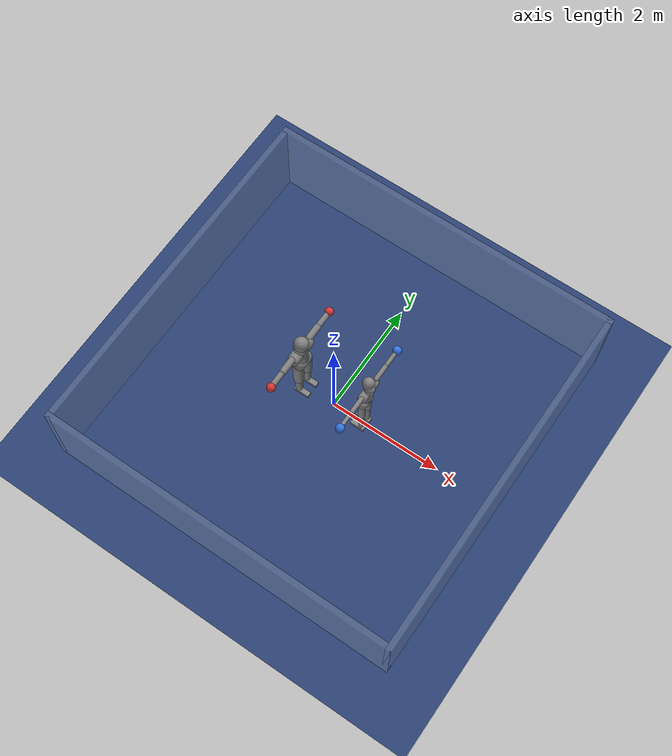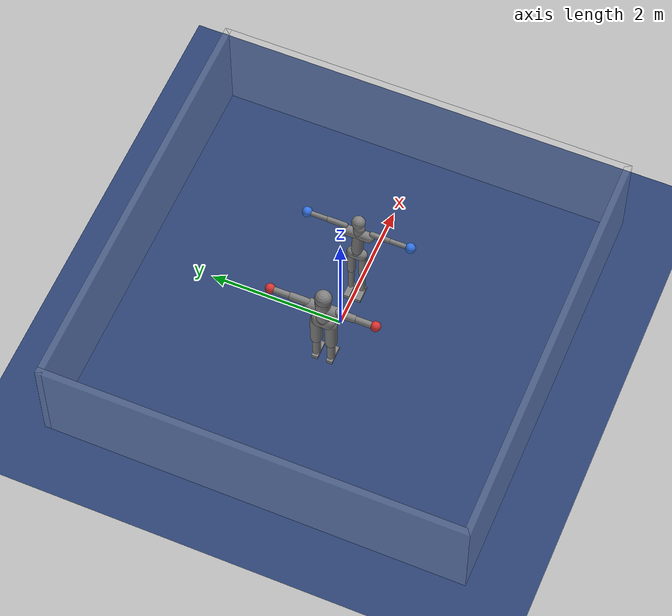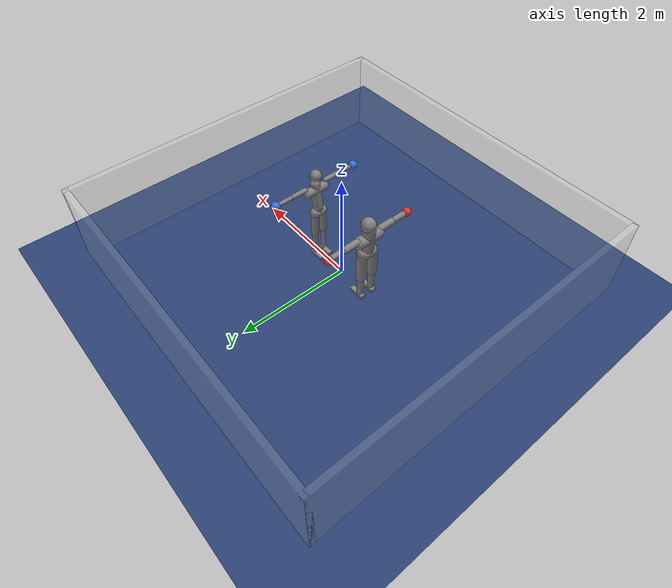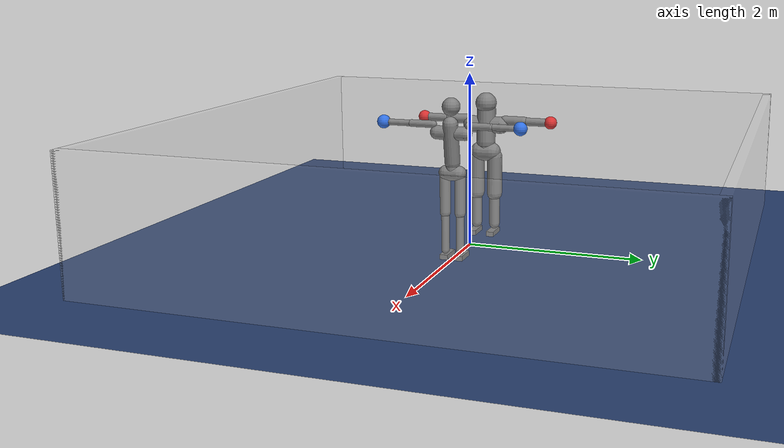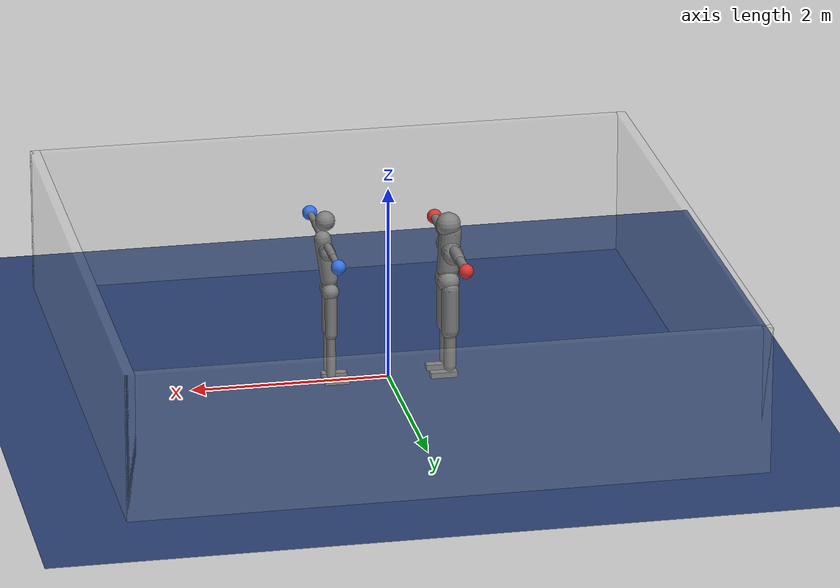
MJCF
<mujoco model="trump_vs_matt_spar">
  <compiler angle="degree" inertiafromgeom="true" autolimits="true"/>
  <option timestep="0.005" iterations="10" ls_iterations="10" integrator="implicitfast">
    <flag eulerdamp="disable"/>
  </option>
  <default>
    <geom contype="1" conaffinity="1" condim="3" friction="1.0 0.005 0.0001" density="1000" margin="0"/>
    <joint limited="true"/>
    <position ctrllimited="true"/>
  </default>
  <asset>
    <texture name="grid" type="2d" builtin="checker" rgb1=".18 .28 .48" rgb2=".14 .22 .40" width="300" height="300"/>
    <material name="grid" texture="grid" texrepeat="6 6" reflectance="0"/>
  </asset>
  <worldbody>
    <light pos="0 0 5" dir="0 0 -1" directional="true"/>
    <geom name="floor" type="plane" size="0 0 0.05" material="grid" friction="1.0 0.005 0.0001"/>
    <geom name="rope_n" type="box" pos="0.0000 3.1000 0.7500" size="3.1500 0.0500 0.7500" rgba="0.8 0.8 0.8 0.15"/>
    <geom name="rope_s" type="box" pos="0.0000 -3.1000 0.7500" size="3.1500 0.0500 0.7500" rgba="0.8 0.8 0.8 0.15"/>
    <geom name="rope_e" type="box" pos="3.1000 0.0000 0.7500" size="0.0500 3.1500 0.7500" rgba="0.8 0.8 0.8 0.15"/>
    <geom name="rope_w" type="box" pos="-3.1000 0.0000 0.7500" size="0.0500 3.1500 0.7500" rgba="0.8 0.8 0.8 0.15"/>
    <body name="a_pelvis" pos="-0.6000 0.0000 0.9982" quat="1.00000 0 0 0.00000">
      <freejoint name="a_root"/>
      <geom name="a_pelvis_geom" type="capsule" fromto="0.0000 -0.0700 0.0000 0.0000 0.0700 0.0000" size="0.1121" mass="9.6630" />
      <geom name="a_pelvis_up" type="capsule" fromto="0.0000 0.0000 0.0000 -0.0074 0.0000 0.0765" size="0.1009" mass="5.7156" />
      <body name="a_torso" pos="-0.0074 0.0000 0.0965">
        <joint name="a_abdomen_z" type="hinge" axis="0 0 1" range="-45 45" damping="0.5" armature="0.08" stiffness="0"/>
        <joint name="a_abdomen_y" type="hinge" axis="0 1 0" range="-60 30" damping="0.5" armature="0.08" stiffness="0"/>
        <joint name="a_abdomen_x" type="hinge" axis="1 0 0" range="-35 35" damping="0.5" armature="0.08" stiffness="0"/>
        <geom name="a_torso_geom" type="capsule" fromto="0.0000 0.0000 0.0200 -0.0223 0.0000 0.4131" size="0.1121" mass="38.4465" />
        <geom name="a_chest_geom" type="capsule" fromto="-0.0178 -0.1841 0.2257 -0.0178 0.1841 0.2257" size="0.1009" mass="0.5"/>
        <geom name="a_head_geom" type="sphere" pos="-0.0037 0.0000 0.4861" size="0.1250" mass="8.7723" />
        <body name="a_upper_arm_l" pos="-0.0223 0.2301 0.2821">
          <joint name="a_shoulder_x_l" type="hinge" axis="1 0 0" range="-170 30" damping="0.5" armature="0.03" stiffness="0"/>
          <joint name="a_shoulder_z_l" type="hinge" axis="0 0 1" range="-110 110" damping="0.5" armature="0.03" stiffness="0"/>
          <geom name="a_upper_arm_l_geom" type="capsule" fromto="0.0000 0.0000 0.0000 0.0000 0.2324 0.0000" size="0.0580" mass="3.0324" />
          <body name="a_forearm_l" pos="0.0000 0.2324 0.0000">
            <joint name="a_elbow_l" type="hinge" axis="0 0 1" range="-150 0" damping="0.5" armature="0.02" stiffness="0"/>
            <geom name="a_forearm_l_geom" type="capsule" fromto="0.0000 0.0000 0.0000 0.0000 0.2561 0.0000" size="0.0480" mass="1.7328" />
            <geom name="a_glove_l" type="sphere" pos="0.0000 0.3236 0.0000" size="0.0750" mass="0.9328" rgba="0.85 0.2 0.2 1"/>
          </body>
        </body>
        <body name="a_upper_arm_r" pos="-0.0223 -0.2301 0.2821">
          <joint name="a_shoulder_x_r" type="hinge" axis="1 0 0" range="-30 170" damping="0.5" armature="0.03" stiffness="0"/>
          <joint name="a_shoulder_z_r" type="hinge" axis="0 0 1" range="-110 110" damping="0.5" armature="0.03" stiffness="0"/>
          <geom name="a_upper_arm_r_geom" type="capsule" fromto="0.0000 0.0000 0.0000 0.0000 -0.2324 0.0000" size="0.0580" mass="3.0324" />
          <body name="a_forearm_r" pos="0.0000 -0.2324 0.0000">
            <joint name="a_elbow_r" type="hinge" axis="0 0 1" range="0 150" damping="0.5" armature="0.02" stiffness="0"/>
            <geom name="a_forearm_r_geom" type="capsule" fromto="0.0000 0.0000 0.0000 0.0000 -0.2561 0.0000" size="0.0480" mass="1.7328" />
            <geom name="a_glove_r" type="sphere" pos="0.0000 -0.3236 0.0000" size="0.0750" mass="0.9328" rgba="0.85 0.2 0.2 1"/>
          </body>
        </body>
      </body>
      <body name="a_thigh_l" pos="-0.0074 0.1113 -0.0593">
        <joint name="a_hip_x_l" type="hinge" axis="1 0 0" range="-40 40" damping="0.5" armature="0.1" stiffness="0"/>
        <joint name="a_hip_z_l" type="hinge" axis="0 0 1" range="-35 35" damping="0.5" armature="0.1" stiffness="0"/>
        <joint name="a_hip_y_l" type="hinge" axis="0 1 0" range="-120 30" damping="0.5" armature="0.1" stiffness="0"/>
        <geom name="a_thigh_l_geom" type="capsule" fromto="0.0000 0.0000 0.0000 0.0000 0.0000 -0.4454" size="0.0900" mass="10.8300" />
        <body name="a_shin_l" pos="0.0000 0.0000 -0.4454">
          <joint name="a_knee_l" type="hinge" axis="0 1 0" range="0 150" damping="0.5" armature="0.1" stiffness="0"/>
          <geom name="a_shin_l_geom" type="capsule" fromto="0.0000 0.0000 0.0000 0.0000 0.0000 -0.3790" size="0.0620" mass="5.0359" />
          <body name="a_foot_l" pos="0.0000 0.0000 -0.3790">
            <joint name="a_ankle_y_l" type="hinge" axis="0 1 0" range="-20 50" damping="0.5" armature="0.03" stiffness="0"/>
            <joint name="a_ankle_x_l" type="hinge" axis="1 0 0" range="-25 25" damping="0.5" armature="0.03" stiffness="0"/>
            <geom name="a_foot_l_geom" type="box" pos="0.0627 0.0000 -0.0870" size="0.1363 0.0450 0.0280" mass="1.5704" friction="1.0 0.005 0.0001"/>
            <site name="a_foot_l_site" pos="0.0627 0.0000 -0.0870" size="0.01"/>
          </body>
        </body>
      </body>
      <body name="a_thigh_r" pos="-0.0074 -0.1113 -0.0593">
        <joint name="a_hip_x_r" type="hinge" axis="1 0 0" range="-40 40" damping="0.5" armature="0.1" stiffness="0"/>
        <joint name="a_hip_z_r" type="hinge" axis="0 0 1" range="-35 35" damping="0.5" armature="0.1" stiffness="0"/>
        <joint name="a_hip_y_r" type="hinge" axis="0 1 0" range="-120 30" damping="0.5" armature="0.1" stiffness="0"/>
        <geom name="a_thigh_r_geom" type="capsule" fromto="0.0000 0.0000 0.0000 0.0000 0.0000 -0.4454" size="0.0900" mass="10.8300" />
        <body name="a_shin_r" pos="0.0000 0.0000 -0.4454">
          <joint name="a_knee_r" type="hinge" axis="0 1 0" range="0 150" damping="0.5" armature="0.1" stiffness="0"/>
          <geom name="a_shin_r_geom" type="capsule" fromto="0.0000 0.0000 0.0000 0.0000 0.0000 -0.3790" size="0.0620" mass="5.0359" />
          <body name="a_foot_r" pos="0.0000 0.0000 -0.3790">
            <joint name="a_ankle_y_r" type="hinge" axis="0 1 0" range="-20 50" damping="0.5" armature="0.03" stiffness="0"/>
            <joint name="a_ankle_x_r" type="hinge" axis="1 0 0" range="-25 25" damping="0.5" armature="0.03" stiffness="0"/>
            <geom name="a_foot_r_geom" type="box" pos="0.0627 0.0000 -0.0870" size="0.1363 0.0450 0.0280" mass="1.5704" friction="1.0 0.005 0.0001"/>
            <site name="a_foot_r_site" pos="0.0627 0.0000 -0.0870" size="0.01"/>
          </body>
        </body>
      </body>
    </body>
    <body name="b_pelvis" pos="0.6000 0.0000 0.9741" quat="0.00000 0 0 1.00000">
      <freejoint name="b_root"/>
      <geom name="b_pelvis_geom" type="capsule" fromto="0.0000 -0.0700 0.0000 0.0000 0.0700 0.0000" size="0.0850" mass="7.0977" />
      <geom name="b_pelvis_up" type="capsule" fromto="0.0000 0.0000 0.0000 -0.0008 0.0000 0.0758" size="0.0765" mass="4.0351" />
      <body name="b_torso" pos="-0.0008 0.0000 0.0958">
        <joint name="b_abdomen_z" type="hinge" axis="0 0 1" range="-45 45" damping="0.5" armature="0.08" stiffness="0"/>
        <joint name="b_abdomen_y" type="hinge" axis="0 1 0" range="-60 30" damping="0.5" armature="0.08" stiffness="0"/>
        <joint name="b_abdomen_x" type="hinge" axis="1 0 0" range="-35 35" damping="0.5" armature="0.08" stiffness="0"/>
        <geom name="b_torso_geom" type="capsule" fromto="0.0000 0.0000 0.0200 -0.0653 -0.0000 0.4511" size="0.0850" mass="27.8320" />
        <geom name="b_chest_geom" type="capsule" fromto="-0.0402 -0.1614 0.3530 -0.0402 0.1614 0.3530" size="0.0765" mass="0.5"/>
        <geom name="b_head_geom" type="sphere" pos="-0.0385 -0.0000 0.6398" size="0.1000" mass="6.3504" />
        <body name="b_upper_arm_l" pos="-0.0503 0.2018 0.4412">
          <joint name="b_shoulder_x_l" type="hinge" axis="1 0 0" range="-170 30" damping="0.5" armature="0.03" stiffness="0"/>
          <joint name="b_shoulder_z_l" type="hinge" axis="0 0 1" range="-110 110" damping="0.5" armature="0.03" stiffness="0"/>
          <geom name="b_upper_arm_l_geom" type="capsule" fromto="0.0000 0.0000 0.0000 0.0000 0.2524 0.0000" size="0.0400" mass="2.1952" />
          <body name="b_forearm_l" pos="0.0000 0.2524 0.0000">
            <joint name="b_elbow_l" type="hinge" axis="0 0 1" range="-150 0" damping="0.5" armature="0.02" stiffness="0"/>
            <geom name="b_forearm_l_geom" type="capsule" fromto="0.0000 0.0000 0.0000 0.0000 0.2567 0.0000" size="0.0350" mass="1.2544" />
            <geom name="b_glove_l" type="sphere" pos="0.0000 0.3242 0.0000" size="0.0750" mass="0.7534" rgba="0.2 0.45 0.9 1"/>
          </body>
        </body>
        <body name="b_upper_arm_r" pos="-0.0503 -0.2018 0.4412">
          <joint name="b_shoulder_x_r" type="hinge" axis="1 0 0" range="-30 170" damping="0.5" armature="0.03" stiffness="0"/>
          <joint name="b_shoulder_z_r" type="hinge" axis="0 0 1" range="-110 110" damping="0.5" armature="0.03" stiffness="0"/>
          <geom name="b_upper_arm_r_geom" type="capsule" fromto="0.0000 0.0000 0.0000 0.0000 -0.2524 0.0000" size="0.0400" mass="2.1952" />
          <body name="b_forearm_r" pos="0.0000 -0.2524 0.0000">
            <joint name="b_elbow_r" type="hinge" axis="0 0 1" range="0 150" damping="0.5" armature="0.02" stiffness="0"/>
            <geom name="b_forearm_r_geom" type="capsule" fromto="0.0000 0.0000 0.0000 0.0000 -0.2567 0.0000" size="0.0350" mass="1.2544" />
            <geom name="b_glove_r" type="sphere" pos="0.0000 -0.3242 0.0000" size="0.0750" mass="0.7534" rgba="0.2 0.45 0.9 1"/>
          </body>
        </body>
      </body>
      <body name="b_thigh_l" pos="0.0008 0.0857 -0.0302">
        <joint name="b_hip_x_l" type="hinge" axis="1 0 0" range="-40 40" damping="0.5" armature="0.1" stiffness="0"/>
        <joint name="b_hip_z_l" type="hinge" axis="0 0 1" range="-35 35" damping="0.5" armature="0.1" stiffness="0"/>
        <joint name="b_hip_y_l" type="hinge" axis="0 1 0" range="-120 30" damping="0.5" armature="0.1" stiffness="0"/>
        <geom name="b_thigh_l_geom" type="capsule" fromto="0.0000 0.0000 0.0000 0.0000 0.0000 -0.4154" size="0.0600" mass="7.8400" />
        <body name="b_shin_l" pos="0.0000 0.0000 -0.4154">
          <joint name="b_knee_l" type="hinge" axis="0 1 0" range="0 150" damping="0.5" armature="0.1" stiffness="0"/>
          <geom name="b_shin_l_geom" type="capsule" fromto="0.0000 0.0000 0.0000 0.0000 0.0000 -0.4309" size="0.0450" mass="3.6456" />
          <body name="b_foot_l" pos="0.0000 0.0000 -0.4309">
            <joint name="b_ankle_y_l" type="hinge" axis="0 1 0" range="-20 50" damping="0.5" armature="0.03" stiffness="0"/>
            <joint name="b_ankle_x_l" type="hinge" axis="1 0 0" range="-25 25" damping="0.5" armature="0.03" stiffness="0"/>
            <geom name="b_foot_l_geom" type="box" pos="0.0581 0.0000 -0.0708" size="0.1262 0.0450 0.0280" mass="1.1368" friction="1.0 0.005 0.0001"/>
            <site name="b_foot_l_site" pos="0.0581 0.0000 -0.0708" size="0.01"/>
          </body>
        </body>
      </body>
      <body name="b_thigh_r" pos="0.0008 -0.0857 -0.0302">
        <joint name="b_hip_x_r" type="hinge" axis="1 0 0" range="-40 40" damping="0.5" armature="0.1" stiffness="0"/>
        <joint name="b_hip_z_r" type="hinge" axis="0 0 1" range="-35 35" damping="0.5" armature="0.1" stiffness="0"/>
        <joint name="b_hip_y_r" type="hinge" axis="0 1 0" range="-120 30" damping="0.5" armature="0.1" stiffness="0"/>
        <geom name="b_thigh_r_geom" type="capsule" fromto="0.0000 0.0000 0.0000 0.0000 0.0000 -0.4154" size="0.0600" mass="7.8400" />
        <body name="b_shin_r" pos="0.0000 0.0000 -0.4154">
          <joint name="b_knee_r" type="hinge" axis="0 1 0" range="0 150" damping="0.5" armature="0.1" stiffness="0"/>
          <geom name="b_shin_r_geom" type="capsule" fromto="0.0000 0.0000 0.0000 0.0000 0.0000 -0.4309" size="0.0450" mass="3.6456" />
          <body name="b_foot_r" pos="0.0000 0.0000 -0.4309">
            <joint name="b_ankle_y_r" type="hinge" axis="0 1 0" range="-20 50" damping="0.5" armature="0.03" stiffness="0"/>
            <joint name="b_ankle_x_r" type="hinge" axis="1 0 0" range="-25 25" damping="0.5" armature="0.03" stiffness="0"/>
            <geom name="b_foot_r_geom" type="box" pos="0.0581 0.0000 -0.0708" size="0.1262 0.0450 0.0280" mass="1.1368" friction="1.0 0.005 0.0001"/>
            <site name="b_foot_r_site" pos="0.0581 0.0000 -0.0708" size="0.01"/>
          </body>
        </body>
      </body>
    </body>
  </worldbody>
  <contact>
    <exclude body1="a_pelvis" body2="a_torso"/>
    <exclude body1="a_pelvis" body2="a_thigh_l"/>
    <exclude body1="a_thigh_l" body2="a_shin_l"/>
    <exclude body1="a_shin_l" body2="a_foot_l"/>
    <exclude body1="a_torso" body2="a_upper_arm_l"/>
    <exclude body1="a_upper_arm_l" body2="a_forearm_l"/>
    <exclude body1="a_pelvis" body2="a_thigh_r"/>
    <exclude body1="a_thigh_r" body2="a_shin_r"/>
    <exclude body1="a_shin_r" body2="a_foot_r"/>
    <exclude body1="a_torso" body2="a_upper_arm_r"/>
    <exclude body1="a_upper_arm_r" body2="a_forearm_r"/>
    <exclude body1="b_pelvis" body2="b_torso"/>
    <exclude body1="b_pelvis" body2="b_thigh_l"/>
    <exclude body1="b_thigh_l" body2="b_shin_l"/>
    <exclude body1="b_shin_l" body2="b_foot_l"/>
    <exclude body1="b_torso" body2="b_upper_arm_l"/>
    <exclude body1="b_upper_arm_l" body2="b_forearm_l"/>
    <exclude body1="b_pelvis" body2="b_thigh_r"/>
    <exclude body1="b_thigh_r" body2="b_shin_r"/>
    <exclude body1="b_shin_r" body2="b_foot_r"/>
    <exclude body1="b_torso" body2="b_upper_arm_r"/>
    <exclude body1="b_upper_arm_r" body2="b_forearm_r"/>
  </contact>
  <actuator>
    <position name="a_abdomen_z" joint="a_abdomen_z" kp="495.9" kv="23.142" forcerange="-187.34 187.34" ctrlrange="-0.7854 0.7854"/>
    <position name="a_abdomen_y" joint="a_abdomen_y" kp="495.9" kv="23.142" forcerange="-187.34 187.34" ctrlrange="-1.0472 0.5236"/>
    <position name="a_abdomen_x" joint="a_abdomen_x" kp="495.9" kv="23.142" forcerange="-187.34 187.34" ctrlrange="-0.6109 0.6109"/>
    <position name="a_shoulder_x_l" joint="a_shoulder_x_l" kp="176.32" kv="8.816" forcerange="-110.2 110.2" ctrlrange="-2.9671 0.5236"/>
    <position name="a_shoulder_z_l" joint="a_shoulder_z_l" kp="176.32" kv="8.816" forcerange="-110.2 110.2" ctrlrange="-1.9199 1.9199"/>
    <position name="a_elbow_l" joint="a_elbow_l" kp="121.22" kv="6.061" forcerange="-77.14 77.14" ctrlrange="-2.6180 0.0000"/>
    <position name="a_shoulder_x_r" joint="a_shoulder_x_r" kp="176.32" kv="8.816" forcerange="-110.2 110.2" ctrlrange="-0.5236 2.9671"/>
    <position name="a_shoulder_z_r" joint="a_shoulder_z_r" kp="176.32" kv="8.816" forcerange="-110.2 110.2" ctrlrange="-1.9199 1.9199"/>
    <position name="a_elbow_r" joint="a_elbow_r" kp="121.22" kv="6.061" forcerange="-77.14 77.14" ctrlrange="0.0000 2.6180"/>
    <position name="a_hip_x_l" joint="a_hip_x_l" kp="661.2" kv="33.06" forcerange="-264.48 264.48" ctrlrange="-0.6981 0.6981"/>
    <position name="a_hip_z_l" joint="a_hip_z_l" kp="661.2" kv="33.06" forcerange="-264.48 264.48" ctrlrange="-0.6109 0.6109"/>
    <position name="a_hip_y_l" joint="a_hip_y_l" kp="661.2" kv="33.06" forcerange="-264.48 264.48" ctrlrange="-2.0944 0.5236"/>
    <position name="a_knee_l" joint="a_knee_l" kp="661.2" kv="33.06" forcerange="-286.52 286.52" ctrlrange="0.0000 2.6180"/>
    <position name="a_ankle_y_l" joint="a_ankle_y_l" kp="826.5" kv="33.06" forcerange="-242.44 242.44" ctrlrange="-0.3491 0.8727"/>
    <position name="a_ankle_x_l" joint="a_ankle_x_l" kp="88.16" kv="4.408" forcerange="-66.12 66.12" ctrlrange="-0.4363 0.4363"/>
    <position name="a_hip_x_r" joint="a_hip_x_r" kp="661.2" kv="33.06" forcerange="-264.48 264.48" ctrlrange="-0.6981 0.6981"/>
    <position name="a_hip_z_r" joint="a_hip_z_r" kp="661.2" kv="33.06" forcerange="-264.48 264.48" ctrlrange="-0.6109 0.6109"/>
    <position name="a_hip_y_r" joint="a_hip_y_r" kp="661.2" kv="33.06" forcerange="-264.48 264.48" ctrlrange="-2.0944 0.5236"/>
    <position name="a_knee_r" joint="a_knee_r" kp="661.2" kv="33.06" forcerange="-286.52 286.52" ctrlrange="0.0000 2.6180"/>
    <position name="a_ankle_y_r" joint="a_ankle_y_r" kp="826.5" kv="33.06" forcerange="-242.44 242.44" ctrlrange="-0.3491 0.8727"/>
    <position name="a_ankle_x_r" joint="a_ankle_x_r" kp="88.16" kv="4.408" forcerange="-66.12 66.12" ctrlrange="-0.4363 0.4363"/>
    <position name="b_abdomen_z" joint="b_abdomen_z" kp="450.0" kv="21.0" forcerange="-170.0 170.0" ctrlrange="-0.7854 0.7854"/>
    <position name="b_abdomen_y" joint="b_abdomen_y" kp="450.0" kv="21.0" forcerange="-170.0 170.0" ctrlrange="-1.0472 0.5236"/>
    <position name="b_abdomen_x" joint="b_abdomen_x" kp="450.0" kv="21.0" forcerange="-170.0 170.0" ctrlrange="-0.6109 0.6109"/>
    <position name="b_shoulder_x_l" joint="b_shoulder_x_l" kp="160.0" kv="8.0" forcerange="-100.0 100.0" ctrlrange="-2.9671 0.5236"/>
    <position name="b_shoulder_z_l" joint="b_shoulder_z_l" kp="160.0" kv="8.0" forcerange="-100.0 100.0" ctrlrange="-1.9199 1.9199"/>
    <position name="b_elbow_l" joint="b_elbow_l" kp="110.0" kv="5.5" forcerange="-70.0 70.0" ctrlrange="-2.6180 0.0000"/>
    <position name="b_shoulder_x_r" joint="b_shoulder_x_r" kp="160.0" kv="8.0" forcerange="-100.0 100.0" ctrlrange="-0.5236 2.9671"/>
    <position name="b_shoulder_z_r" joint="b_shoulder_z_r" kp="160.0" kv="8.0" forcerange="-100.0 100.0" ctrlrange="-1.9199 1.9199"/>
    <position name="b_elbow_r" joint="b_elbow_r" kp="110.0" kv="5.5" forcerange="-70.0 70.0" ctrlrange="0.0000 2.6180"/>
    <position name="b_hip_x_l" joint="b_hip_x_l" kp="600.0" kv="30.0" forcerange="-240.0 240.0" ctrlrange="-0.6981 0.6981"/>
    <position name="b_hip_z_l" joint="b_hip_z_l" kp="600.0" kv="30.0" forcerange="-240.0 240.0" ctrlrange="-0.6109 0.6109"/>
    <position name="b_hip_y_l" joint="b_hip_y_l" kp="600.0" kv="30.0" forcerange="-240.0 240.0" ctrlrange="-2.0944 0.5236"/>
    <position name="b_knee_l" joint="b_knee_l" kp="600.0" kv="30.0" forcerange="-260.0 260.0" ctrlrange="0.0000 2.6180"/>
    <position name="b_ankle_y_l" joint="b_ankle_y_l" kp="750.0" kv="30.0" forcerange="-220.0 220.0" ctrlrange="-0.3491 0.8727"/>
    <position name="b_ankle_x_l" joint="b_ankle_x_l" kp="80.0" kv="4.0" forcerange="-60.0 60.0" ctrlrange="-0.4363 0.4363"/>
    <position name="b_hip_x_r" joint="b_hip_x_r" kp="600.0" kv="30.0" forcerange="-240.0 240.0" ctrlrange="-0.6981 0.6981"/>
    <position name="b_hip_z_r" joint="b_hip_z_r" kp="600.0" kv="30.0" forcerange="-240.0 240.0" ctrlrange="-0.6109 0.6109"/>
    <position name="b_hip_y_r" joint="b_hip_y_r" kp="600.0" kv="30.0" forcerange="-240.0 240.0" ctrlrange="-2.0944 0.5236"/>
    <position name="b_knee_r" joint="b_knee_r" kp="600.0" kv="30.0" forcerange="-260.0 260.0" ctrlrange="0.0000 2.6180"/>
    <position name="b_ankle_y_r" joint="b_ankle_y_r" kp="750.0" kv="30.0" forcerange="-220.0 220.0" ctrlrange="-0.3491 0.8727"/>
    <position name="b_ankle_x_r" joint="b_ankle_x_r" kp="80.0" kv="4.0" forcerange="-60.0 60.0" ctrlrange="-0.4363 0.4363"/>
  </actuator>
  <keyframe>
    <key name="stand" qpos="-0.6000 0.0000 0.9790 1.00000 0 0 0.00000 0.0000 0.0000 0.0000 -1.3265 -0.7330 -1.9548 1.3265 0.7330 1.9548 0.0000 0.0000 -0.1656 0.4538 -0.2882 0.0000 0.0000 0.0000 -0.1656 0.4538 -0.2882 0.0000 0.6000 0.0000 0.9544 0.00000 0 0 1.00000 0.0000 0.0000 0.0000 -1.3265 -0.7330 -1.9548 1.3265 0.7330 1.9548 0.0000 0.0000 -0.1765 0.4538 -0.2773 0.0000 0.0000 0.0000 -0.1765 0.4538 -0.2773 0.0000"/>
  </keyframe>
</mujoco>
